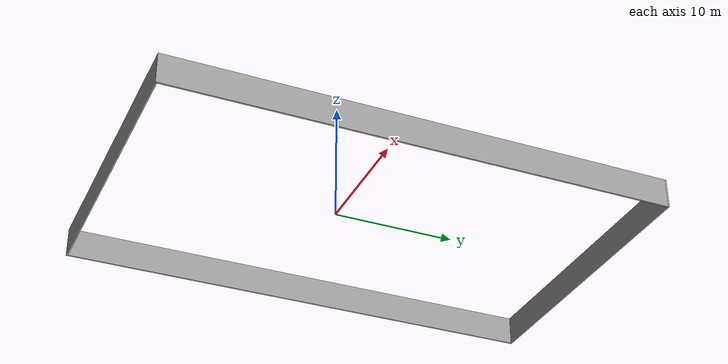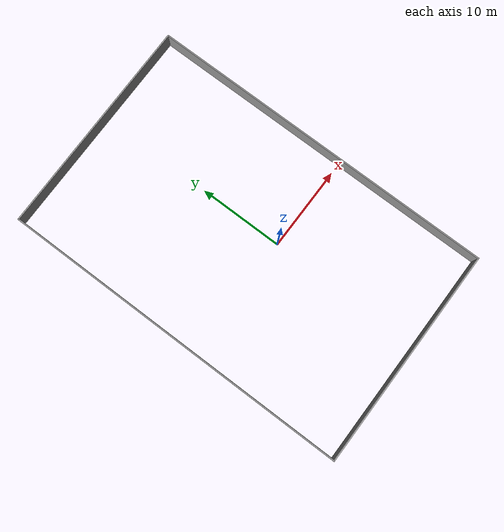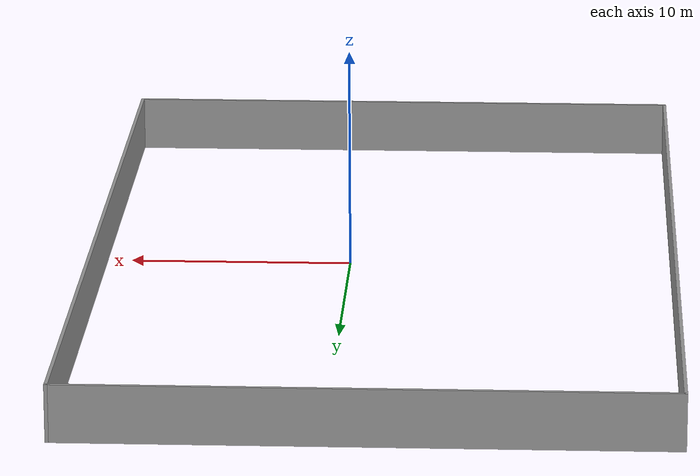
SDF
<?xml version='1.0'?>
<sdf version='1.7'>
  <model name='box4'>
    <pose>-1.74932 2.76773 0 0 -0 0</pose>
    <link name='Wall_5'>
      <collision name='Wall_5_Collision'>
        <geometry>
          <box>
            <size>41.5 0.15 2.5</size>
          </box>
        </geometry>
        <pose>0 0 1.25 0 -0 0</pose>
      </collision>
      <visual name='Wall_5_Visual'>
        <pose>0 0 1.25 0 -0 0</pose>
        <geometry>
          <box>
            <size>41.5 0.15 2.5</size>
          </box>
        </geometry>
        <material>
          <script>
            <uri>file://media/materials/scripts/gazebo.material</uri>
            <name>Gazebo/Grey</name>
          </script>
          <ambient>1 1 1 1</ambient>
        </material>
        <meta>
          <layer>0</layer>
        </meta>
      </visual>
      <pose>12.925 -0 0 0 -0 1.5708</pose>
    </link>
    <link name='Wall_6'>
      <collision name='Wall_6_Collision'>
        <geometry>
          <box>
            <size>26 0.15 2.5</size>
          </box>
        </geometry>
        <pose>0 0 1.25 0 -0 0</pose>
      </collision>
      <visual name='Wall_6_Visual'>
        <pose>0 0 1.25 0 -0 0</pose>
        <geometry>
          <box>
            <size>26 0.15 2.5</size>
          </box>
        </geometry>
        <material>
          <script>
            <uri>file://media/materials/scripts/gazebo.material</uri>
            <name>Gazebo/Grey</name>
          </script>
          <ambient>1 1 1 1</ambient>
        </material>
        <meta>
          <layer>0</layer>
        </meta>
      </visual>
      <pose>0 20.675 0 0 -0 3.14159</pose>
    </link>
    <link name='Wall_7'>
      <collision name='Wall_7_Collision'>
        <geometry>
          <box>
            <size>41.5 0.15 2.5</size>
          </box>
        </geometry>
        <pose>0 0 1.25 0 -0 0</pose>
      </collision>
      <visual name='Wall_7_Visual'>
        <pose>0 0 1.25 0 -0 0</pose>
        <geometry>
          <box>
            <size>41.5 0.15 2.5</size>
          </box>
        </geometry>
        <material>
          <script>
            <uri>file://media/materials/scripts/gazebo.material</uri>
            <name>Gazebo/Grey</name>
          </script>
          <ambient>1 1 1 1</ambient>
        </material>
        <meta>
          <layer>0</layer>
        </meta>
      </visual>
      <pose>-12.925 -0 0 0 -0 -1.5708</pose>
    </link>
    <link name='Wall_8'>
      <collision name='Wall_8_Collision'>
        <geometry>
          <box>
            <size>26 0.15 2.5</size>
          </box>
        </geometry>
        <pose>0 0 1.25 0 -0 0</pose>
      </collision>
      <visual name='Wall_8_Visual'>
        <pose>0 0 1.25 0 -0 0</pose>
        <geometry>
          <box>
            <size>26 0.15 2.5</size>
          </box>
        </geometry>
        <material>
          <script>
            <uri>file://media/materials/scripts/gazebo.material</uri>
            <name>Gazebo/Grey</name>
          </script>
          <ambient>1 1 1 1</ambient>
        </material>
        <meta>
          <layer>0</layer>
        </meta>
      </visual>
      <pose>0 -20.675 0 0 -0 0</pose>
    </link>
    <static>1</static>
  </model>
</sdf>
